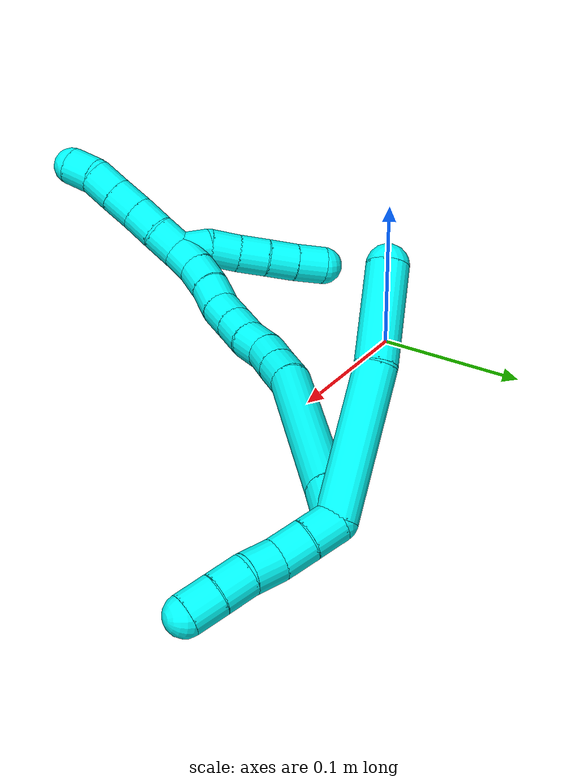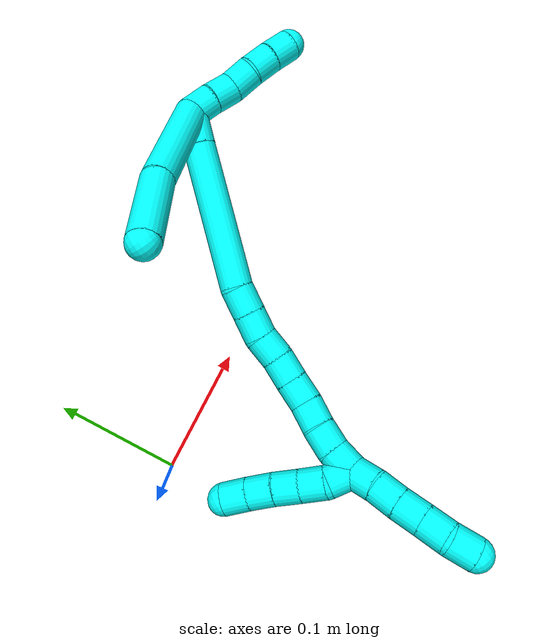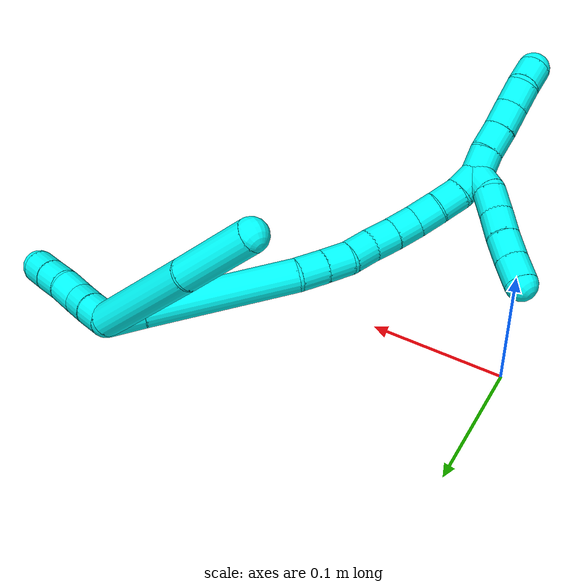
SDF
<sdf version="1.7">
 <world name="default">
  <model name="3">
   <static>0</static>
   <link name="3">
    <collision name="collision-cylinder-e_1_2_8">
     <pose>-0.037035 0.0159 -0.019755 -2.4639 -0.970389 1.96309</pose>
     <geometry><cylinder><radius>0.0125</radius><length>0.089771</length></cylinder></geometry>
     <surface>
      <friction><ode><mu>1.16</mu><mu2>1.16</mu2><slip1>0</slip1><slip2>0</slip2></ode></friction>
      <contact><ode><kp>1e+06</kp><kd>1</kd><max_vel>0</max_vel><min_depth>0.001</min_depth></ode></contact>
     </surface>
    </collision>
    <visual name="visual-cylinder-e_1_2_8">
     <pose>-0.037035 0.0159 -0.019755 -2.4639 -0.970389 1.96309</pose>
     <geometry><cylinder><radius>0.0125</radius><length>0.089771</length></cylinder></geometry>
     <material><ambient>0.003922 1 0.996078 1</ambient></material>
    </visual>
    <collision name="collision-cylinder-e_2_8_6">
     <pose>-0.101144 0.038641 -0.050785 -2.59622 -1.11754 2.30043</pose>
     <geometry><cylinder><radius>0.0125</radius><length>0.060229</length></cylinder></geometry>
     <surface>
      <friction><ode><mu>1.16</mu><mu2>1.16</mu2><slip1>0</slip1><slip2>0</slip2></ode></friction>
      <contact><ode><kp>1e+06</kp><kd>1</kd><max_vel>0</max_vel><min_depth>0.001</min_depth></ode></contact>
     </surface>
    </collision>
    <visual name="visual-cylinder-e_2_8_6">
     <pose>-0.101144 0.038641 -0.050785 -2.59622 -1.11754 2.30043</pose>
     <geometry><cylinder><radius>0.0125</radius><length>0.060229</length></cylinder></geometry>
     <material><ambient>0.003922 1 0.996078 1</ambient></material>
    </visual>
    <collision name="collision-cylinder-e_1_2_9">
     <pose>0.003008 -0.002527 0.009196 0.268148 0.305511 0.041526</pose>
     <geometry><cylinder><radius>0.0125</radius><length>0.02</length></cylinder></geometry>
     <surface>
      <friction><ode><mu>1.16</mu><mu2>1.16</mu2><slip1>0</slip1><slip2>0</slip2></ode></friction>
      <contact><ode><kp>1e+06</kp><kd>1</kd><max_vel>0</max_vel><min_depth>0.001</min_depth></ode></contact>
     </surface>
    </collision>
    <visual name="visual-cylinder-e_1_2_9">
     <pose>0.003008 -0.002527 0.009196 0.268148 0.305511 0.041526</pose>
     <geometry><cylinder><radius>0.0125</radius><length>0.02</length></cylinder></geometry>
     <material><ambient>0.003922 1 0.996078 1</ambient></material>
    </visual>
    <collision name="collision-cylinder-e_2_9_10">
     <pose>0.008797 -0.008409 0.027392 0.356907 0.281903 0.051176</pose>
     <geometry><cylinder><radius>0.0125</radius><length>0.02</length></cylinder></geometry>
     <surface>
      <friction><ode><mu>1.16</mu><mu2>1.16</mu2><slip1>0</slip1><slip2>0</slip2></ode></friction>
      <contact><ode><kp>1e+06</kp><kd>1</kd><max_vel>0</max_vel><min_depth>0.001</min_depth></ode></contact>
     </surface>
    </collision>
    <visual name="visual-cylinder-e_2_9_10">
     <pose>0.008797 -0.008409 0.027392 0.356907 0.281903 0.051176</pose>
     <geometry><cylinder><radius>0.0125</radius><length>0.02</length></cylinder></geometry>
     <material><ambient>0.003922 1 0.996078 1</ambient></material>
    </visual>
    <collision name="collision-cylinder-e_3_10_11">
     <pose>0.013817 -0.012367 0.04612 0.061746 0.225635 0.006998</pose>
     <geometry><cylinder><radius>0.0125</radius><length>0.02</length></cylinder></geometry>
     <surface>
      <friction><ode><mu>1.16</mu><mu2>1.16</mu2><slip1>0</slip1><slip2>0</slip2></ode></friction>
      <contact><ode><kp>1e+06</kp><kd>1</kd><max_vel>0</max_vel><min_depth>0.001</min_depth></ode></contact>
     </surface>
    </collision>
    <visual name="visual-cylinder-e_3_10_11">
     <pose>0.013817 -0.012367 0.04612 0.061746 0.225635 0.006998</pose>
     <geometry><cylinder><radius>0.0125</radius><length>0.02</length></cylinder></geometry>
     <material><ambient>0.003922 1 0.996078 1</ambient></material>
    </visual>
    <collision name="collision-cylinder-e_4_11_12">
     <pose>0.01914 -0.015223 0.065089 0.239318 0.313743 0.03803</pose>
     <geometry><cylinder><radius>0.0125</radius><length>0.02</length></cylinder></geometry>
     <surface>
      <friction><ode><mu>1.16</mu><mu2>1.16</mu2><slip1>0</slip1><slip2>0</slip2></ode></friction>
      <contact><ode><kp>1e+06</kp><kd>1</kd><max_vel>0</max_vel><min_depth>0.001</min_depth></ode></contact>
     </surface>
    </collision>
    <visual name="visual-cylinder-e_4_11_12">
     <pose>0.01914 -0.015223 0.065089 0.239318 0.313743 0.03803</pose>
     <geometry><cylinder><radius>0.0125</radius><length>0.02</length></cylinder></geometry>
     <material><ambient>0.003922 1 0.996078 1</ambient></material>
    </visual>
    <collision name="collision-cylinder-e_5_12_5">
     <pose>0.025175 -0.020389 0.083431 0.309625 0.299301 0.047052</pose>
     <geometry><cylinder><radius>0.0125</radius><length>0.02</length></cylinder></geometry>
     <surface>
      <friction><ode><mu>1.16</mu><mu2>1.16</mu2><slip1>0</slip1><slip2>0</slip2></ode></friction>
      <contact><ode><kp>1e+06</kp><kd>1</kd><max_vel>0</max_vel><min_depth>0.001</min_depth></ode></contact>
     </surface>
    </collision>
    <visual name="visual-cylinder-e_5_12_5">
     <pose>0.025175 -0.020389 0.083431 0.309625 0.299301 0.047052</pose>
     <geometry><cylinder><radius>0.0125</radius><length>0.02</length></cylinder></geometry>
     <material><ambient>0.003922 1 0.996078 1</ambient></material>
    </visual>
    <collision name="collision-cylinder-e_1_2_13">
     <pose>-0.011168 -0.006075 -0.004047 2.15844 -0.991945 -1.58133</pose>
     <geometry><cylinder><radius>0.0125</radius><length>0.026684</length></cylinder></geometry>
     <surface>
      <friction><ode><mu>1.16</mu><mu2>1.16</mu2><slip1>0</slip1><slip2>0</slip2></ode></friction>
      <contact><ode><kp>1e+06</kp><kd>1</kd><max_vel>0</max_vel><min_depth>0.001</min_depth></ode></contact>
     </surface>
    </collision>
    <visual name="visual-cylinder-e_1_2_13">
     <pose>-0.011168 -0.006075 -0.004047 2.15844 -0.991945 -1.58133</pose>
     <geometry><cylinder><radius>0.0125</radius><length>0.026684</length></cylinder></geometry>
     <material><ambient>0.003922 1 0.996078 1</ambient></material>
    </visual>
    <collision name="collision-cylinder-e_2_13_14">
     <pose>-0.068423 -0.039263 -0.024781 2.1225 -0.966244 -1.50772</pose>
     <geometry><cylinder><radius>0.0125</radius><length>0.112028</length></cylinder></geometry>
     <surface>
      <friction><ode><mu>1.16</mu><mu2>1.16</mu2><slip1>0</slip1><slip2>0</slip2></ode></friction>
      <contact><ode><kp>1e+06</kp><kd>1</kd><max_vel>0</max_vel><min_depth>0.001</min_depth></ode></contact>
     </surface>
    </collision>
    <visual name="visual-cylinder-e_2_13_14">
     <pose>-0.068423 -0.039263 -0.024781 2.1225 -0.966244 -1.50772</pose>
     <geometry><cylinder><radius>0.0125</radius><length>0.112028</length></cylinder></geometry>
     <material><ambient>0.003922 1 0.996078 1</ambient></material>
    </visual>
    <collision name="collision-cylinder-e_3_14_15">
     <pose>-0.122814 -0.072754 -0.042811 1.77833 -0.905539 -1.08022</pose>
     <geometry><cylinder><radius>0.0125</radius><length>0.021113</length></cylinder></geometry>
     <surface>
      <friction><ode><mu>1.16</mu><mu2>1.16</mu2><slip1>0</slip1><slip2>0</slip2></ode></friction>
      <contact><ode><kp>1e+06</kp><kd>1</kd><max_vel>0</max_vel><min_depth>0.001</min_depth></ode></contact>
     </surface>
    </collision>
    <visual name="visual-cylinder-e_3_14_15">
     <pose>-0.122814 -0.072754 -0.042811 1.77833 -0.905539 -1.08022</pose>
     <geometry><cylinder><radius>0.0125</radius><length>0.021113</length></cylinder></geometry>
     <material><ambient>0.003922 1 0.996078 1</ambient></material>
    </visual>
    <collision name="collision-cylinder-e_4_15_16">
     <pose>-0.139238 -0.084933 -0.045398 1.78203 -0.939537 -1.12162</pose>
     <geometry><cylinder><radius>0.0125</radius><length>0.020113</length></cylinder></geometry>
     <surface>
      <friction><ode><mu>1.16</mu><mu2>1.16</mu2><slip1>0</slip1><slip2>0</slip2></ode></friction>
      <contact><ode><kp>1e+06</kp><kd>1</kd><max_vel>0</max_vel><min_depth>0.001</min_depth></ode></contact>
     </surface>
    </collision>
    <visual name="visual-cylinder-e_4_15_16">
     <pose>-0.139238 -0.084933 -0.045398 1.78203 -0.939537 -1.12162</pose>
     <geometry><cylinder><radius>0.0125</radius><length>0.020113</length></cylinder></geometry>
     <material><ambient>0.003922 1 0.996078 1</ambient></material>
    </visual>
    <collision name="collision-cylinder-e_5_16_17">
     <pose>-0.155232 -0.096811 -0.045547 1.39239 -0.90603 -0.772796</pose>
     <geometry><cylinder><radius>0.0125</radius><length>0.020011</length></cylinder></geometry>
     <surface>
      <friction><ode><mu>1.16</mu><mu2>1.16</mu2><slip1>0</slip1><slip2>0</slip2></ode></friction>
      <contact><ode><kp>1e+06</kp><kd>1</kd><max_vel>0</max_vel><min_depth>0.001</min_depth></ode></contact>
     </surface>
    </collision>
    <visual name="visual-cylinder-e_5_16_17">
     <pose>-0.155232 -0.096811 -0.045547 1.39239 -0.90603 -0.772796</pose>
     <geometry><cylinder><radius>0.0125</radius><length>0.020011</length></cylinder></geometry>
     <material><ambient>0.003922 1 0.996078 1</ambient></material>
    </visual>
    <collision name="collision-cylinder-e_6_17_18">
     <pose>-0.171631 -0.108126 -0.044566 1.59267 -1.01945 -1.03819</pose>
     <geometry><cylinder><radius>0.0125</radius><length>0.020014</length></cylinder></geometry>
     <surface>
      <friction><ode><mu>1.16</mu><mu2>1.16</mu2><slip1>0</slip1><slip2>0</slip2></ode></friction>
      <contact><ode><kp>1e+06</kp><kd>1</kd><max_vel>0</max_vel><min_depth>0.001</min_depth></ode></contact>
     </surface>
    </collision>
    <visual name="visual-cylinder-e_6_17_18">
     <pose>-0.171631 -0.108126 -0.044566 1.59267 -1.01945 -1.03819</pose>
     <geometry><cylinder><radius>0.0125</radius><length>0.020014</length></cylinder></geometry>
     <material><ambient>0.003922 1 0.996078 1</ambient></material>
    </visual>
    <collision name="collision-cylinder-e_7_18_19">
     <pose>-0.188828 -0.118352 -0.044437 1.52193 -1.04857 -1.00673</pose>
     <geometry><cylinder><radius>0.0125</radius><length>0.020012</length></cylinder></geometry>
     <surface>
      <friction><ode><mu>1.16</mu><mu2>1.16</mu2><slip1>0</slip1><slip2>0</slip2></ode></friction>
      <contact><ode><kp>1e+06</kp><kd>1</kd><max_vel>0</max_vel><min_depth>0.001</min_depth></ode></contact>
     </surface>
    </collision>
    <visual name="visual-cylinder-e_7_18_19">
     <pose>-0.188828 -0.118352 -0.044437 1.52193 -1.04857 -1.00673</pose>
     <geometry><cylinder><radius>0.0125</radius><length>0.020012</length></cylinder></geometry>
     <material><ambient>0.003922 1 0.996078 1</ambient></material>
    </visual>
    <collision name="collision-cylinder-e_8_19_20">
     <pose>-0.207045 -0.126302 -0.044724 1.74788 -1.26516 -1.43869</pose>
     <geometry><cylinder><radius>0.0125</radius><length>0.020018</length></cylinder></geometry>
     <surface>
      <friction><ode><mu>1.16</mu><mu2>1.16</mu2><slip1>0</slip1><slip2>0</slip2></ode></friction>
      <contact><ode><kp>1e+06</kp><kd>1</kd><max_vel>0</max_vel><min_depth>0.001</min_depth></ode></contact>
     </surface>
    </collision>
    <visual name="visual-cylinder-e_8_19_20">
     <pose>-0.207045 -0.126302 -0.044724 1.74788 -1.26516 -1.43869</pose>
     <geometry><cylinder><radius>0.0125</radius><length>0.020018</length></cylinder></geometry>
     <material><ambient>0.003922 1 0.996078 1</ambient></material>
    </visual>
    <collision name="collision-cylinder-e_9_20_21">
     <pose>-0.22581 -0.133133 -0.045023 1.51108 -1.17302 -1.11859</pose>
     <geometry><cylinder><radius>0.0125</radius><length>0.020001</length></cylinder></geometry>
     <surface>
      <friction><ode><mu>1.16</mu><mu2>1.16</mu2><slip1>0</slip1><slip2>0</slip2></ode></friction>
      <contact><ode><kp>1e+06</kp><kd>1</kd><max_vel>0</max_vel><min_depth>0.001</min_depth></ode></contact>
     </surface>
    </collision>
    <visual name="visual-cylinder-e_9_20_21">
     <pose>-0.22581 -0.133133 -0.045023 1.51108 -1.17302 -1.11859</pose>
     <geometry><cylinder><radius>0.0125</radius><length>0.020001</length></cylinder></geometry>
     <material><ambient>0.003922 1 0.996078 1</ambient></material>
    </visual>
    <collision name="collision-cylinder-e_10_21_1">
     <pose>-0.244142 -0.140498 -0.042603 1.01162 -1.14561 -0.686166</pose>
     <geometry><cylinder><radius>0.0125</radius><length>0.020004</length></cylinder></geometry>
     <surface>
      <friction><ode><mu>1.16</mu><mu2>1.16</mu2><slip1>0</slip1><slip2>0</slip2></ode></friction>
      <contact><ode><kp>1e+06</kp><kd>1</kd><max_vel>0</max_vel><min_depth>0.001</min_depth></ode></contact>
     </surface>
    </collision>
    <visual name="visual-cylinder-e_10_21_1">
     <pose>-0.244142 -0.140498 -0.042603 1.01162 -1.14561 -0.686166</pose>
     <geometry><cylinder><radius>0.0125</radius><length>0.020004</length></cylinder></geometry>
     <material><ambient>0.003922 1 0.996078 1</ambient></material>
    </visual>
    <collision name="collision-cylinder-e_1_1_22">
     <pose>-0.252677 -0.142011 -0.050199 -2.94153 0.057653 -0.559508</pose>
     <geometry><cylinder><radius>0.0125</radius><length>0.02</length></cylinder></geometry>
     <surface>
      <friction><ode><mu>1.16</mu><mu2>1.16</mu2><slip1>0</slip1><slip2>0</slip2></ode></friction>
      <contact><ode><kp>1e+06</kp><kd>1</kd><max_vel>0</max_vel><min_depth>0.001</min_depth></ode></contact>
     </surface>
    </collision>
    <visual name="visual-cylinder-e_1_1_22">
     <pose>-0.252677 -0.142011 -0.050199 -2.94153 0.057653 -0.559508</pose>
     <geometry><cylinder><radius>0.0125</radius><length>0.02</length></cylinder></geometry>
     <material><ambient>0.003922 1 0.996078 1</ambient></material>
    </visual>
    <collision name="collision-cylinder-e_2_22_23">
     <pose>-0.248386 -0.139377 -0.069244 -3.07148 0.380654 -2.78147</pose>
     <geometry><cylinder><radius>0.0125</radius><length>0.02</length></cylinder></geometry>
     <surface>
      <friction><ode><mu>1.16</mu><mu2>1.16</mu2><slip1>0</slip1><slip2>0</slip2></ode></friction>
      <contact><ode><kp>1e+06</kp><kd>1</kd><max_vel>0</max_vel><min_depth>0.001</min_depth></ode></contact>
     </surface>
    </collision>
    <visual name="visual-cylinder-e_2_22_23">
     <pose>-0.248386 -0.139377 -0.069244 -3.07148 0.380654 -2.78147</pose>
     <geometry><cylinder><radius>0.0125</radius><length>0.02</length></cylinder></geometry>
     <material><ambient>0.003922 1 0.996078 1</ambient></material>
    </visual>
    <collision name="collision-cylinder-e_3_23_24">
     <pose>-0.241017 -0.137293 -0.087704 -2.98702 0.373966 -2.36458</pose>
     <geometry><cylinder><radius>0.0125</radius><length>0.02</length></cylinder></geometry>
     <surface>
      <friction><ode><mu>1.16</mu><mu2>1.16</mu2><slip1>0</slip1><slip2>0</slip2></ode></friction>
      <contact><ode><kp>1e+06</kp><kd>1</kd><max_vel>0</max_vel><min_depth>0.001</min_depth></ode></contact>
     </surface>
    </collision>
    <visual name="visual-cylinder-e_3_23_24">
     <pose>-0.241017 -0.137293 -0.087704 -2.98702 0.373966 -2.36458</pose>
     <geometry><cylinder><radius>0.0125</radius><length>0.02</length></cylinder></geometry>
     <material><ambient>0.003922 1 0.996078 1</ambient></material>
    </visual>
    <collision name="collision-cylinder-e_4_24_25">
     <pose>-0.234045 -0.135126 -0.106306 -3.06371 0.338325 -2.69301</pose>
     <geometry><cylinder><radius>0.0125</radius><length>0.02</length></cylinder></geometry>
     <surface>
      <friction><ode><mu>1.16</mu><mu2>1.16</mu2><slip1>0</slip1><slip2>0</slip2></ode></friction>
      <contact><ode><kp>1e+06</kp><kd>1</kd><max_vel>0</max_vel><min_depth>0.001</min_depth></ode></contact>
     </surface>
    </collision>
    <visual name="visual-cylinder-e_4_24_25">
     <pose>-0.234045 -0.135126 -0.106306 -3.06371 0.338325 -2.69301</pose>
     <geometry><cylinder><radius>0.0125</radius><length>0.02</length></cylinder></geometry>
     <material><ambient>0.003922 1 0.996078 1</ambient></material>
    </visual>
    <collision name="collision-cylinder-e_5_25_4">
     <pose>-0.227838 -0.133426 -0.125236 -3.04053 0.292958 -2.48112</pose>
     <geometry><cylinder><radius>0.0125</radius><length>0.02</length></cylinder></geometry>
     <surface>
      <friction><ode><mu>1.16</mu><mu2>1.16</mu2><slip1>0</slip1><slip2>0</slip2></ode></friction>
      <contact><ode><kp>1e+06</kp><kd>1</kd><max_vel>0</max_vel><min_depth>0.001</min_depth></ode></contact>
     </surface>
    </collision>
    <visual name="visual-cylinder-e_5_25_4">
     <pose>-0.227838 -0.133426 -0.125236 -3.04053 0.292958 -2.48112</pose>
     <geometry><cylinder><radius>0.0125</radius><length>0.02</length></cylinder></geometry>
     <material><ambient>0.003922 1 0.996078 1</ambient></material>
    </visual>
    <collision name="collision-cylinder-e_1_1_26">
     <pose>-0.261926 -0.144813 -0.035504 0.164954 -1.0497 -0.095656</pose>
     <geometry><cylinder><radius>0.0125</radius><length>0.02</length></cylinder></geometry>
     <surface>
      <friction><ode><mu>1.16</mu><mu2>1.16</mu2><slip1>0</slip1><slip2>0</slip2></ode></friction>
      <contact><ode><kp>1e+06</kp><kd>1</kd><max_vel>0</max_vel><min_depth>0.001</min_depth></ode></contact>
     </surface>
    </collision>
    <visual name="visual-cylinder-e_1_1_26">
     <pose>-0.261926 -0.144813 -0.035504 0.164954 -1.0497 -0.095656</pose>
     <geometry><cylinder><radius>0.0125</radius><length>0.02</length></cylinder></geometry>
     <material><ambient>0.003922 1 0.996078 1</ambient></material>
    </visual>
    <collision name="collision-cylinder-e_2_26_27">
     <pose>-0.279581 -0.147539 -0.026633 0.449084 -1.11566 -0.283098</pose>
     <geometry><cylinder><radius>0.0125</radius><length>0.02</length></cylinder></geometry>
     <surface>
      <friction><ode><mu>1.16</mu><mu2>1.16</mu2><slip1>0</slip1><slip2>0</slip2></ode></friction>
      <contact><ode><kp>1e+06</kp><kd>1</kd><max_vel>0</max_vel><min_depth>0.001</min_depth></ode></contact>
     </surface>
    </collision>
    <visual name="visual-cylinder-e_2_26_27">
     <pose>-0.279581 -0.147539 -0.026633 0.449084 -1.11566 -0.283098</pose>
     <geometry><cylinder><radius>0.0125</radius><length>0.02</length></cylinder></geometry>
     <material><ambient>0.003922 1 0.996078 1</ambient></material>
    </visual>
    <collision name="collision-cylinder-e_3_27_28">
     <pose>-0.297343 -0.15119 -0.018214 0.372553 -1.07161 -0.222867</pose>
     <geometry><cylinder><radius>0.0125</radius><length>0.02</length></cylinder></geometry>
     <surface>
      <friction><ode><mu>1.16</mu><mu2>1.16</mu2><slip1>0</slip1><slip2>0</slip2></ode></friction>
      <contact><ode><kp>1e+06</kp><kd>1</kd><max_vel>0</max_vel><min_depth>0.001</min_depth></ode></contact>
     </surface>
    </collision>
    <visual name="visual-cylinder-e_3_27_28">
     <pose>-0.297343 -0.15119 -0.018214 0.372553 -1.07161 -0.222867</pose>
     <geometry><cylinder><radius>0.0125</radius><length>0.02</length></cylinder></geometry>
     <material><ambient>0.003922 1 0.996078 1</ambient></material>
    </visual>
    <collision name="collision-cylinder-e_4_28_29">
     <pose>-0.314982 -0.154586 -0.009423 0.364689 -1.08852 -0.222282</pose>
     <geometry><cylinder><radius>0.0125</radius><length>0.02</length></cylinder></geometry>
     <surface>
      <friction><ode><mu>1.16</mu><mu2>1.16</mu2><slip1>0</slip1><slip2>0</slip2></ode></friction>
      <contact><ode><kp>1e+06</kp><kd>1</kd><max_vel>0</max_vel><min_depth>0.001</min_depth></ode></contact>
     </surface>
    </collision>
    <visual name="visual-cylinder-e_4_28_29">
     <pose>-0.314982 -0.154586 -0.009423 0.364689 -1.08852 -0.222282</pose>
     <geometry><cylinder><radius>0.0125</radius><length>0.02</length></cylinder></geometry>
     <material><ambient>0.003922 1 0.996078 1</ambient></material>
    </visual>
    <collision name="collision-cylinder-e_5_29_3">
     <pose>-0.33141 -0.160663 -0.000279 0.743401 -0.858573 -0.35317</pose>
     <geometry><cylinder><radius>0.0125</radius><length>0.02</length></cylinder></geometry>
     <surface>
      <friction><ode><mu>1.16</mu><mu2>1.16</mu2><slip1>0</slip1><slip2>0</slip2></ode></friction>
      <contact><ode><kp>1e+06</kp><kd>1</kd><max_vel>0</max_vel><min_depth>0.001</min_depth></ode></contact>
     </surface>
    </collision>
    <visual name="visual-cylinder-e_5_29_3">
     <pose>-0.33141 -0.160663 -0.000279 0.743401 -0.858573 -0.35317</pose>
     <geometry><cylinder><radius>0.0125</radius><length>0.02</length></cylinder></geometry>
     <material><ambient>0.003922 1 0.996078 1</ambient></material>
    </visual>
    <collision name="collision-sphere-3">
     <pose>-0.33898 -0.165086 0.004532 0 -0 0</pose>
     <geometry><sphere><radius>0.0125</radius></sphere></geometry>
     <surface>
      <friction><ode><mu>1.16</mu><mu2>1.16</mu2><slip1>0</slip1><slip2>0</slip2></ode></friction>
      <contact><ode><kp>1e+06</kp><kd>1</kd><max_vel>0</max_vel><min_depth>0.001</min_depth></ode></contact>
     </surface>
    </collision>
    <visual name="visual-sphere-3">
     <pose>-0.33898 -0.165086 0.004532 0 -0 0</pose>
     <geometry><sphere><radius>0.0125</radius></sphere></geometry>
     <material><ambient>0.003922 1 0.996078 1</ambient></material>
    </visual>
    <collision name="collision-sphere-29">
     <pose>-0.323841 -0.15624 -0.00509 0 -0 0</pose>
     <geometry><sphere><radius>0.0125</radius></sphere></geometry>
     <surface>
      <friction><ode><mu>1.16</mu><mu2>1.16</mu2><slip1>0</slip1><slip2>0</slip2></ode></friction>
      <contact><ode><kp>1e+06</kp><kd>1</kd><max_vel>0</max_vel><min_depth>0.001</min_depth></ode></contact>
     </surface>
    </collision>
    <visual name="visual-sphere-29">
     <pose>-0.323841 -0.15624 -0.00509 0 -0 0</pose>
     <geometry><sphere><radius>0.0125</radius></sphere></geometry>
     <material><ambient>0.003922 1 0.996078 1</ambient></material>
    </visual>
    <collision name="collision-sphere-28">
     <pose>-0.306123 -0.152932 -0.013756 0 -0 0</pose>
     <geometry><sphere><radius>0.0125</radius></sphere></geometry>
     <surface>
      <friction><ode><mu>1.16</mu><mu2>1.16</mu2><slip1>0</slip1><slip2>0</slip2></ode></friction>
      <contact><ode><kp>1e+06</kp><kd>1</kd><max_vel>0</max_vel><min_depth>0.001</min_depth></ode></contact>
     </surface>
    </collision>
    <visual name="visual-sphere-28">
     <pose>-0.306123 -0.152932 -0.013756 0 -0 0</pose>
     <geometry><sphere><radius>0.0125</radius></sphere></geometry>
     <material><ambient>0.003922 1 0.996078 1</ambient></material>
    </visual>
    <collision name="collision-sphere-27">
     <pose>-0.288563 -0.149447 -0.022673 0 -0 0</pose>
     <geometry><sphere><radius>0.0125</radius></sphere></geometry>
     <surface>
      <friction><ode><mu>1.16</mu><mu2>1.16</mu2><slip1>0</slip1><slip2>0</slip2></ode></friction>
      <contact><ode><kp>1e+06</kp><kd>1</kd><max_vel>0</max_vel><min_depth>0.001</min_depth></ode></contact>
     </surface>
    </collision>
    <visual name="visual-sphere-27">
     <pose>-0.288563 -0.149447 -0.022673 0 -0 0</pose>
     <geometry><sphere><radius>0.0125</radius></sphere></geometry>
     <material><ambient>0.003922 1 0.996078 1</ambient></material>
    </visual>
    <collision name="collision-sphere-26">
     <pose>-0.270599 -0.14563 -0.030593 0 -0 0</pose>
     <geometry><sphere><radius>0.0125</radius></sphere></geometry>
     <surface>
      <friction><ode><mu>1.16</mu><mu2>1.16</mu2><slip1>0</slip1><slip2>0</slip2></ode></friction>
      <contact><ode><kp>1e+06</kp><kd>1</kd><max_vel>0</max_vel><min_depth>0.001</min_depth></ode></contact>
     </surface>
    </collision>
    <visual name="visual-sphere-26">
     <pose>-0.270599 -0.14563 -0.030593 0 -0 0</pose>
     <geometry><sphere><radius>0.0125</radius></sphere></geometry>
     <material><ambient>0.003922 1 0.996078 1</ambient></material>
    </visual>
    <collision name="collision-sphere-4">
     <pose>-0.224951 -0.13246 -0.134761 0 -0 0</pose>
     <geometry><sphere><radius>0.0125</radius></sphere></geometry>
     <surface>
      <friction><ode><mu>1.16</mu><mu2>1.16</mu2><slip1>0</slip1><slip2>0</slip2></ode></friction>
      <contact><ode><kp>1e+06</kp><kd>1</kd><max_vel>0</max_vel><min_depth>0.001</min_depth></ode></contact>
     </surface>
    </collision>
    <visual name="visual-sphere-4">
     <pose>-0.224951 -0.13246 -0.134761 0 -0 0</pose>
     <geometry><sphere><radius>0.0125</radius></sphere></geometry>
     <material><ambient>0.003922 1 0.996078 1</ambient></material>
    </visual>
    <collision name="collision-sphere-25">
     <pose>-0.230726 -0.134392 -0.115711 0 -0 0</pose>
     <geometry><sphere><radius>0.0125</radius></sphere></geometry>
     <surface>
      <friction><ode><mu>1.16</mu><mu2>1.16</mu2><slip1>0</slip1><slip2>0</slip2></ode></friction>
      <contact><ode><kp>1e+06</kp><kd>1</kd><max_vel>0</max_vel><min_depth>0.001</min_depth></ode></contact>
     </surface>
    </collision>
    <visual name="visual-sphere-25">
     <pose>-0.230726 -0.134392 -0.115711 0 -0 0</pose>
     <geometry><sphere><radius>0.0125</radius></sphere></geometry>
     <material><ambient>0.003922 1 0.996078 1</ambient></material>
    </visual>
    <collision name="collision-sphere-24">
     <pose>-0.237364 -0.13586 -0.096902 0 -0 0</pose>
     <geometry><sphere><radius>0.0125</radius></sphere></geometry>
     <surface>
      <friction><ode><mu>1.16</mu><mu2>1.16</mu2><slip1>0</slip1><slip2>0</slip2></ode></friction>
      <contact><ode><kp>1e+06</kp><kd>1</kd><max_vel>0</max_vel><min_depth>0.001</min_depth></ode></contact>
     </surface>
    </collision>
    <visual name="visual-sphere-24">
     <pose>-0.237364 -0.13586 -0.096902 0 -0 0</pose>
     <geometry><sphere><radius>0.0125</radius></sphere></geometry>
     <material><ambient>0.003922 1 0.996078 1</ambient></material>
    </visual>
    <collision name="collision-sphere-23">
     <pose>-0.244671 -0.138726 -0.078506 0 -0 0</pose>
     <geometry><sphere><radius>0.0125</radius></sphere></geometry>
     <surface>
      <friction><ode><mu>1.16</mu><mu2>1.16</mu2><slip1>0</slip1><slip2>0</slip2></ode></friction>
      <contact><ode><kp>1e+06</kp><kd>1</kd><max_vel>0</max_vel><min_depth>0.001</min_depth></ode></contact>
     </surface>
    </collision>
    <visual name="visual-sphere-23">
     <pose>-0.244671 -0.138726 -0.078506 0 -0 0</pose>
     <geometry><sphere><radius>0.0125</radius></sphere></geometry>
     <material><ambient>0.003922 1 0.996078 1</ambient></material>
    </visual>
    <collision name="collision-sphere-22">
     <pose>-0.252101 -0.140027 -0.059983 0 -0 0</pose>
     <geometry><sphere><radius>0.0125</radius></sphere></geometry>
     <surface>
      <friction><ode><mu>1.16</mu><mu2>1.16</mu2><slip1>0</slip1><slip2>0</slip2></ode></friction>
      <contact><ode><kp>1e+06</kp><kd>1</kd><max_vel>0</max_vel><min_depth>0.001</min_depth></ode></contact>
     </surface>
    </collision>
    <visual name="visual-sphere-22">
     <pose>-0.252101 -0.140027 -0.059983 0 -0 0</pose>
     <geometry><sphere><radius>0.0125</radius></sphere></geometry>
     <material><ambient>0.003922 1 0.996078 1</ambient></material>
    </visual>
    <collision name="collision-sphere-1">
     <pose>-0.253254 -0.143995 -0.040415 0 -0 0</pose>
     <geometry><sphere><radius>0.0125</radius></sphere></geometry>
     <surface>
      <friction><ode><mu>1.16</mu><mu2>1.16</mu2><slip1>0</slip1><slip2>0</slip2></ode></friction>
      <contact><ode><kp>1e+06</kp><kd>1</kd><max_vel>0</max_vel><min_depth>0.001</min_depth></ode></contact>
     </surface>
    </collision>
    <visual name="visual-sphere-1">
     <pose>-0.253254 -0.143995 -0.040415 0 -0 0</pose>
     <geometry><sphere><radius>0.0125</radius></sphere></geometry>
     <material><ambient>0.003922 1 0.996078 1</ambient></material>
    </visual>
    <collision name="collision-sphere-21">
     <pose>-0.23503 -0.137001 -0.044792 0 -0 0</pose>
     <geometry><sphere><radius>0.0125</radius></sphere></geometry>
     <surface>
      <friction><ode><mu>1.16</mu><mu2>1.16</mu2><slip1>0</slip1><slip2>0</slip2></ode></friction>
      <contact><ode><kp>1e+06</kp><kd>1</kd><max_vel>0</max_vel><min_depth>0.001</min_depth></ode></contact>
     </surface>
    </collision>
    <visual name="visual-sphere-21">
     <pose>-0.23503 -0.137001 -0.044792 0 -0 0</pose>
     <geometry><sphere><radius>0.0125</radius></sphere></geometry>
     <material><ambient>0.003922 1 0.996078 1</ambient></material>
    </visual>
    <collision name="collision-sphere-11">
     <pose>0.016054 -0.012968 0.055848 0 -0 0</pose>
     <geometry><sphere><radius>0.0125</radius></sphere></geometry>
     <surface>
      <friction><ode><mu>1.16</mu><mu2>1.16</mu2><slip1>0</slip1><slip2>0</slip2></ode></friction>
      <contact><ode><kp>1e+06</kp><kd>1</kd><max_vel>0</max_vel><min_depth>0.001</min_depth></ode></contact>
     </surface>
    </collision>
    <visual name="visual-sphere-11">
     <pose>0.016054 -0.012968 0.055848 0 -0 0</pose>
     <geometry><sphere><radius>0.0125</radius></sphere></geometry>
     <material><ambient>0.003922 1 0.996078 1</ambient></material>
    </visual>
    <collision name="collision-sphere-10">
     <pose>0.011579 -0.011765 0.036392 0 -0 0</pose>
     <geometry><sphere><radius>0.0125</radius></sphere></geometry>
     <surface>
      <friction><ode><mu>1.16</mu><mu2>1.16</mu2><slip1>0</slip1><slip2>0</slip2></ode></friction>
      <contact><ode><kp>1e+06</kp><kd>1</kd><max_vel>0</max_vel><min_depth>0.001</min_depth></ode></contact>
     </surface>
    </collision>
    <visual name="visual-sphere-10">
     <pose>0.011579 -0.011765 0.036392 0 -0 0</pose>
     <geometry><sphere><radius>0.0125</radius></sphere></geometry>
     <material><ambient>0.003922 1 0.996078 1</ambient></material>
    </visual>
    <collision name="collision-sphere-6">
     <pose>-0.128218 0.045482 -0.062059 0 -0 0</pose>
     <geometry><sphere><radius>0.0125</radius></sphere></geometry>
     <surface>
      <friction><ode><mu>1.16</mu><mu2>1.16</mu2><slip1>0</slip1><slip2>0</slip2></ode></friction>
      <contact><ode><kp>1e+06</kp><kd>1</kd><max_vel>0</max_vel><min_depth>0.001</min_depth></ode></contact>
     </surface>
    </collision>
    <visual name="visual-sphere-6">
     <pose>-0.128218 0.045482 -0.062059 0 -0 0</pose>
     <geometry><sphere><radius>0.0125</radius></sphere></geometry>
     <material><ambient>0.003922 1 0.996078 1</ambient></material>
    </visual>
    <collision name="collision-sphere-9">
     <pose>0.006016 -0.005054 0.018392 0 -0 0</pose>
     <geometry><sphere><radius>0.0125</radius></sphere></geometry>
     <surface>
      <friction><ode><mu>1.16</mu><mu2>1.16</mu2><slip1>0</slip1><slip2>0</slip2></ode></friction>
      <contact><ode><kp>1e+06</kp><kd>1</kd><max_vel>0</max_vel><min_depth>0.001</min_depth></ode></contact>
     </surface>
    </collision>
    <visual name="visual-sphere-9">
     <pose>0.006016 -0.005054 0.018392 0 -0 0</pose>
     <geometry><sphere><radius>0.0125</radius></sphere></geometry>
     <material><ambient>0.003922 1 0.996078 1</ambient></material>
    </visual>
    <collision name="collision-sphere-2">
     <geometry><sphere><radius>0.0125</radius></sphere></geometry>
     <surface>
      <friction><ode><mu>1.16</mu><mu2>1.16</mu2><slip1>0</slip1><slip2>0</slip2></ode></friction>
      <contact><ode><kp>1e+06</kp><kd>1</kd><max_vel>0</max_vel><min_depth>0.001</min_depth></ode></contact>
     </surface>
    </collision>
    <visual name="visual-sphere-2">
     <geometry><sphere><radius>0.0125</radius></sphere></geometry>
     <material><ambient>0.003922 1 0.996078 1</ambient></material>
    </visual>
    <collision name="collision-sphere-19">
     <pose>-0.1975 -0.123337 -0.044193 0 -0 0</pose>
     <geometry><sphere><radius>0.0125</radius></sphere></geometry>
     <surface>
      <friction><ode><mu>1.16</mu><mu2>1.16</mu2><slip1>0</slip1><slip2>0</slip2></ode></friction>
      <contact><ode><kp>1e+06</kp><kd>1</kd><max_vel>0</max_vel><min_depth>0.001</min_depth></ode></contact>
     </surface>
    </collision>
    <visual name="visual-sphere-19">
     <pose>-0.1975 -0.123337 -0.044193 0 -0 0</pose>
     <geometry><sphere><radius>0.0125</radius></sphere></geometry>
     <material><ambient>0.003922 1 0.996078 1</ambient></material>
    </visual>
    <collision name="collision-sphere-8">
     <pose>-0.07407 0.0318 -0.039511 0 -0 0</pose>
     <geometry><sphere><radius>0.0125</radius></sphere></geometry>
     <surface>
      <friction><ode><mu>1.16</mu><mu2>1.16</mu2><slip1>0</slip1><slip2>0</slip2></ode></friction>
      <contact><ode><kp>1e+06</kp><kd>1</kd><max_vel>0</max_vel><min_depth>0.001</min_depth></ode></contact>
     </surface>
    </collision>
    <visual name="visual-sphere-8">
     <pose>-0.07407 0.0318 -0.039511 0 -0 0</pose>
     <geometry><sphere><radius>0.0125</radius></sphere></geometry>
     <material><ambient>0.003922 1 0.996078 1</ambient></material>
    </visual>
    <collision name="collision-sphere-12">
     <pose>0.022226 -0.017478 0.07433 0 -0 0</pose>
     <geometry><sphere><radius>0.0125</radius></sphere></geometry>
     <surface>
      <friction><ode><mu>1.16</mu><mu2>1.16</mu2><slip1>0</slip1><slip2>0</slip2></ode></friction>
      <contact><ode><kp>1e+06</kp><kd>1</kd><max_vel>0</max_vel><min_depth>0.001</min_depth></ode></contact>
     </surface>
    </collision>
    <visual name="visual-sphere-12">
     <pose>0.022226 -0.017478 0.07433 0 -0 0</pose>
     <geometry><sphere><radius>0.0125</radius></sphere></geometry>
     <material><ambient>0.003922 1 0.996078 1</ambient></material>
    </visual>
    <collision name="collision-sphere-5">
     <pose>0.028123 -0.023301 0.092532 0 -0 0</pose>
     <geometry><sphere><radius>0.0125</radius></sphere></geometry>
     <surface>
      <friction><ode><mu>1.16</mu><mu2>1.16</mu2><slip1>0</slip1><slip2>0</slip2></ode></friction>
      <contact><ode><kp>1e+06</kp><kd>1</kd><max_vel>0</max_vel><min_depth>0.001</min_depth></ode></contact>
     </surface>
    </collision>
    <visual name="visual-sphere-5">
     <pose>0.028123 -0.023301 0.092532 0 -0 0</pose>
     <geometry><sphere><radius>0.0125</radius></sphere></geometry>
     <material><ambient>0.003922 1 0.996078 1</ambient></material>
    </visual>
    <collision name="collision-sphere-13">
     <pose>-0.022337 -0.012149 -0.008093 0 -0 0</pose>
     <geometry><sphere><radius>0.0125</radius></sphere></geometry>
     <surface>
      <friction><ode><mu>1.16</mu><mu2>1.16</mu2><slip1>0</slip1><slip2>0</slip2></ode></friction>
      <contact><ode><kp>1e+06</kp><kd>1</kd><max_vel>0</max_vel><min_depth>0.001</min_depth></ode></contact>
     </surface>
    </collision>
    <visual name="visual-sphere-13">
     <pose>-0.022337 -0.012149 -0.008093 0 -0 0</pose>
     <geometry><sphere><radius>0.0125</radius></sphere></geometry>
     <material><ambient>0.003922 1 0.996078 1</ambient></material>
    </visual>
    <collision name="collision-sphere-14">
     <pose>-0.114509 -0.066378 -0.041468 0 -0 0</pose>
     <geometry><sphere><radius>0.0125</radius></sphere></geometry>
     <surface>
      <friction><ode><mu>1.16</mu><mu2>1.16</mu2><slip1>0</slip1><slip2>0</slip2></ode></friction>
      <contact><ode><kp>1e+06</kp><kd>1</kd><max_vel>0</max_vel><min_depth>0.001</min_depth></ode></contact>
     </surface>
    </collision>
    <visual name="visual-sphere-14">
     <pose>-0.114509 -0.066378 -0.041468 0 -0 0</pose>
     <geometry><sphere><radius>0.0125</radius></sphere></geometry>
     <material><ambient>0.003922 1 0.996078 1</ambient></material>
    </visual>
    <collision name="collision-sphere-15">
     <pose>-0.13112 -0.07913 -0.044153 0 -0 0</pose>
     <geometry><sphere><radius>0.0125</radius></sphere></geometry>
     <surface>
      <friction><ode><mu>1.16</mu><mu2>1.16</mu2><slip1>0</slip1><slip2>0</slip2></ode></friction>
      <contact><ode><kp>1e+06</kp><kd>1</kd><max_vel>0</max_vel><min_depth>0.001</min_depth></ode></contact>
     </surface>
    </collision>
    <visual name="visual-sphere-15">
     <pose>-0.13112 -0.07913 -0.044153 0 -0 0</pose>
     <geometry><sphere><radius>0.0125</radius></sphere></geometry>
     <material><ambient>0.003922 1 0.996078 1</ambient></material>
    </visual>
    <collision name="collision-sphere-16">
     <pose>-0.147357 -0.090737 -0.046642 0 -0 0</pose>
     <geometry><sphere><radius>0.0125</radius></sphere></geometry>
     <surface>
      <friction><ode><mu>1.16</mu><mu2>1.16</mu2><slip1>0</slip1><slip2>0</slip2></ode></friction>
      <contact><ode><kp>1e+06</kp><kd>1</kd><max_vel>0</max_vel><min_depth>0.001</min_depth></ode></contact>
     </surface>
    </collision>
    <visual name="visual-sphere-16">
     <pose>-0.147357 -0.090737 -0.046642 0 -0 0</pose>
     <geometry><sphere><radius>0.0125</radius></sphere></geometry>
     <material><ambient>0.003922 1 0.996078 1</ambient></material>
    </visual>
    <collision name="collision-sphere-17">
     <pose>-0.163107 -0.102885 -0.044451 0 -0 0</pose>
     <geometry><sphere><radius>0.0125</radius></sphere></geometry>
     <surface>
      <friction><ode><mu>1.16</mu><mu2>1.16</mu2><slip1>0</slip1><slip2>0</slip2></ode></friction>
      <contact><ode><kp>1e+06</kp><kd>1</kd><max_vel>0</max_vel><min_depth>0.001</min_depth></ode></contact>
     </surface>
    </collision>
    <visual name="visual-sphere-17">
     <pose>-0.163107 -0.102885 -0.044451 0 -0 0</pose>
     <geometry><sphere><radius>0.0125</radius></sphere></geometry>
     <material><ambient>0.003922 1 0.996078 1</ambient></material>
    </visual>
    <collision name="collision-sphere-18">
     <pose>-0.180155 -0.113367 -0.044681 0 -0 0</pose>
     <geometry><sphere><radius>0.0125</radius></sphere></geometry>
     <surface>
      <friction><ode><mu>1.16</mu><mu2>1.16</mu2><slip1>0</slip1><slip2>0</slip2></ode></friction>
      <contact><ode><kp>1e+06</kp><kd>1</kd><max_vel>0</max_vel><min_depth>0.001</min_depth></ode></contact>
     </surface>
    </collision>
    <visual name="visual-sphere-18">
     <pose>-0.180155 -0.113367 -0.044681 0 -0 0</pose>
     <geometry><sphere><radius>0.0125</radius></sphere></geometry>
     <material><ambient>0.003922 1 0.996078 1</ambient></material>
    </visual>
    <collision name="collision-sphere-20">
     <pose>-0.216591 -0.129266 -0.045254 0 -0 0</pose>
     <geometry><sphere><radius>0.0125</radius></sphere></geometry>
     <surface>
      <friction><ode><mu>1.16</mu><mu2>1.16</mu2><slip1>0</slip1><slip2>0</slip2></ode></friction>
      <contact><ode><kp>1e+06</kp><kd>1</kd><max_vel>0</max_vel><min_depth>0.001</min_depth></ode></contact>
     </surface>
    </collision>
    <visual name="visual-sphere-20">
     <pose>-0.216591 -0.129266 -0.045254 0 -0 0</pose>
     <geometry><sphere><radius>0.0125</radius></sphere></geometry>
     <material><ambient>0.003922 1 0.996078 1</ambient></material>
    </visual>
    <inertial>
     <pose>-0.132032 -0.064828 -0.027766 0 -0 0</pose>
     <mass>0.75</mass>
     <inertia>
      <ixx>-7.7e-05</ixx>
      <ixy>0</ixy>
      <ixz>0</ixz>
      <iyy>0.000128</iyy>
      <iyz>0</iyz>
      <izz>0.000222</izz>
     </inertia>
    </inertial>
   </link>
   <pose>0.254692 0.114895 0.036876 1.42248 0.63586 0.974985</pose>
  </model>
 </world>
</sdf>
